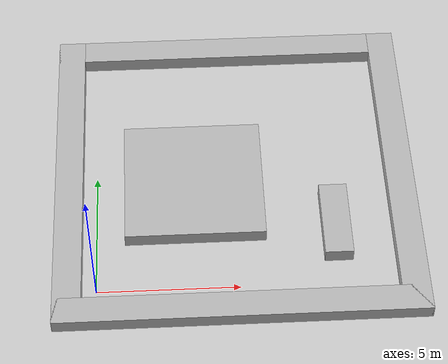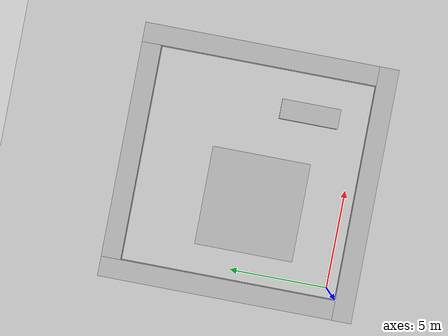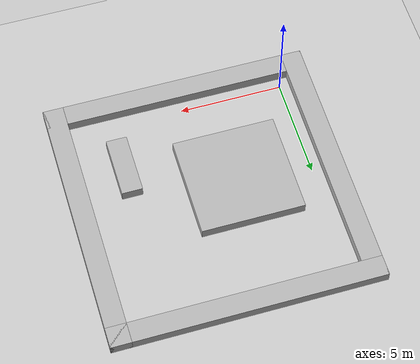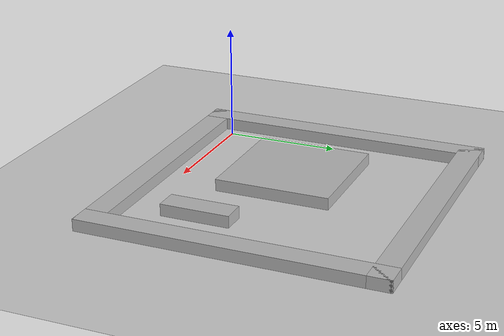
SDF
<?xml version="1.0" ?>
<sdf version="1.6">
<world name="default">
	<include>
		<uri>model://ground_plane</uri>
	</include>
	<model name="wall_0">
		<static>true</static>
		<link name="link">
			<collision name="collision">
				<geometry>
					<box>
						<size>13.0 1.0 1.0</size>
					</box>
				</geometry>
			</collision>
			<visual name="visual">
				<geometry>
					<box>
						<size>13.0 1.0 1.0</size>
					</box>
				</geometry>
			</visual>
		</link>
		<pose>5.00 -1.00 0.0 0 0 0</pose>
	</model>
	<model name="wall_1">
		<static>true</static>
		<link name="link">
			<collision name="collision">
				<geometry>
					<box>
						<size>1.0 13.0 1.0</size>
					</box>
				</geometry>
			</collision>
			<visual name="visual">
				<geometry>
					<box>
						<size>1.0 13.0 1.0</size>
					</box>
				</geometry>
			</visual>
		</link>
		<pose>-1.00 5.00 0.0 0 0 0</pose>
	</model>
	<model name="wall_2">
		<static>true</static>
		<link name="link">
			<collision name="collision">
				<geometry>
					<box>
						<size>1.0 13.0 1.0</size>
					</box>
				</geometry>
			</collision>
			<visual name="visual">
				<geometry>
					<box>
						<size>1.0 13.0 1.0</size>
					</box>
				</geometry>
			</visual>
		</link>
		<pose>11.00 5.00 0.0 0 0 0</pose>
	</model>
	<model name="wall_3">
		<static>true</static>
		<link name="link">
			<collision name="collision">
				<geometry>
					<box>
						<size>13.0 1.0 1.0</size>
					</box>
				</geometry>
			</collision>
			<visual name="visual">
				<geometry>
					<box>
						<size>13.0 1.0 1.0</size>
					</box>
				</geometry>
			</visual>
		</link>
		<pose>5.00 11.00 0.0 0 0 0</pose>
	</model>
	<model name="obstacle_0">
		<static>true</static>
		<link name="link">
			<collision name="collision">
				<geometry>
					<box>
						<size>5 5 1.0</size>
					</box>
				</geometry>
			</collision>
			<visual name="visual">
				<geometry>
					<box>
						<size>5 5 1.0</size>
					</box>
				</geometry>
			</visual>
		</link>
		<pose>3.50 4.50 0.0 0 0 0</pose>
	</model>
	<model name="obstacle_1">
		<static>true</static>
		<link name="link">
			<collision name="collision">
				<geometry>
					<box>
						<size>1 3 1.0</size>
					</box>
				</geometry>
			</collision>
			<visual name="visual">
				<geometry>
					<box>
						<size>1 3 1.0</size>
					</box>
				</geometry>
			</visual>
		</link>
		<pose>8.50 2.50 0.0 0 0 0</pose>
	</model>
	<light name="sun" type="directional">
		<cast_shadows>true</cast_shadows>
		<pose>0 0 10 0 0 0</pose>
		<diffuse>0.8 0.8 0.8 1</diffuse>
		<specular>0.2 0.2 0.2 1</specular>
		<attenuation>
			<range>1000</range>
			<constant>0.9</constant>
			<linear>0.01</linear>
			<quadratic>0.001</quadratic>
		</attenuation>
		<direction>-0.5 0.5 -0.5</direction>
	</light>
</world>
</sdf>
